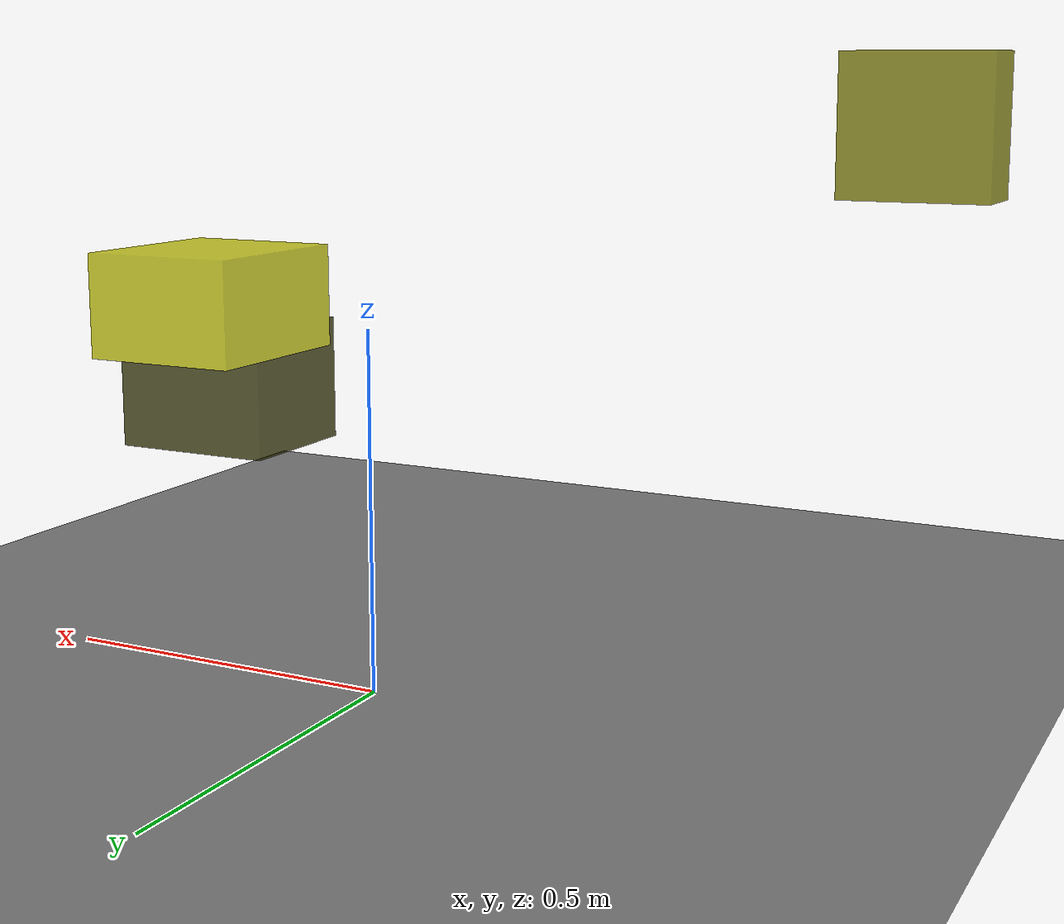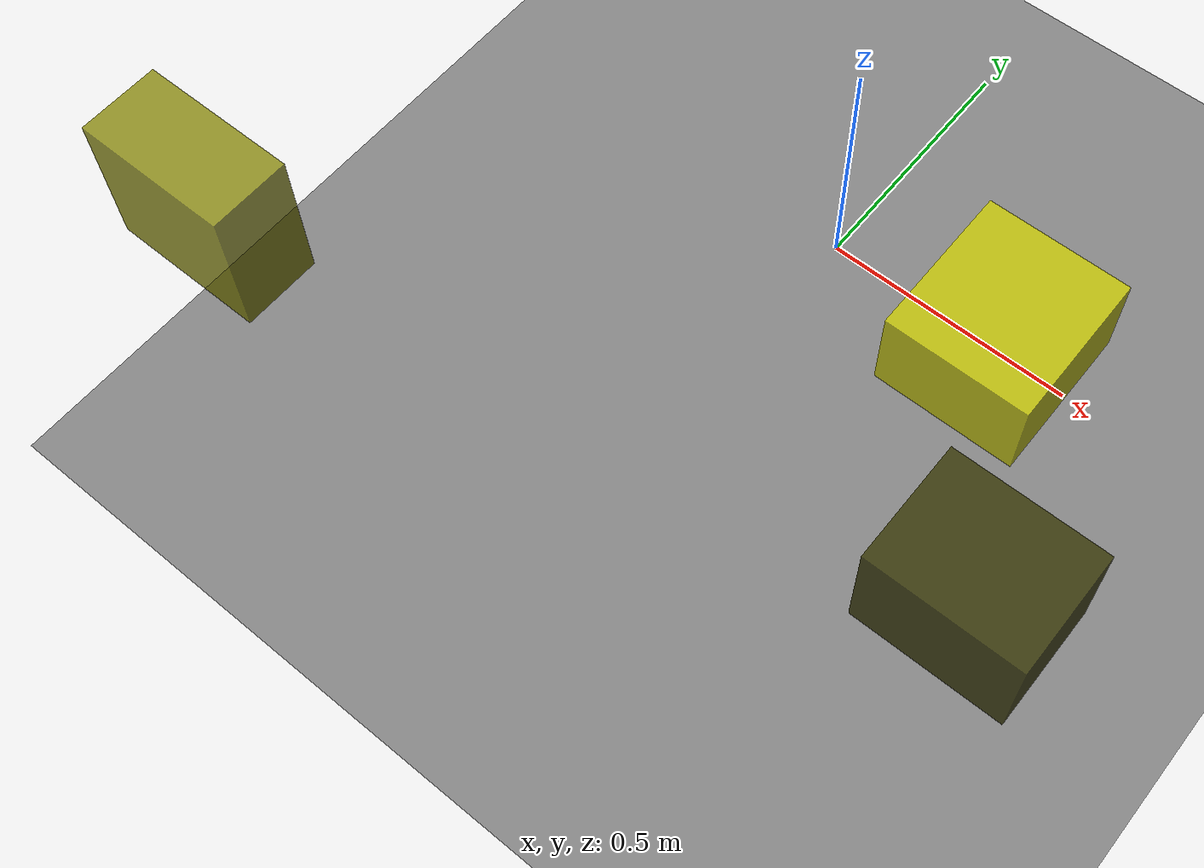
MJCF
<?xml version="1.0"?>
<mujoco model="obstacle_scene">
  <compiler angle="radian" coordinate="local"/>
  <option timestep="0.001" gravity="0 0 -9.81"/>

  <asset>
    <material name="obstacle_mat" rgba="0.8 0.8 0.0 0.8"/>
    <material name="ground_mat" rgba="0.5 0.5 0.5 1"/>
  </asset>

  <worldbody>
    <!-- Ground plane -->
    <geom name="ground" type="plane" size="3 3 0.1" material="ground_mat"/>

    <!-- Obstacles -->
    <body name="obstacle_0" pos="0.622432 -0.531572 0.298126">
      <geom name="obs_0" type="box" size="0.143242 0.115502 0.107654" rgba="0.2 0.2 0.0 0.8"/>
    </body>
    <body name="obstacle_1" pos="-0.495148 -0.929099 0.747921">
      <geom name="obs_1" type="box" size="0.127985 0.064889 0.121814" rgba="0.5 0.5 0.0 0.8"/>
    </body>
    <body name="obstacle_2" pos="0.441318 -0.249953 0.484289">
      <geom name="obs_2" type="box" size="0.124919 0.137885 0.081044" rgba="0.8 0.8 0.0 0.8"/>
    </body>
  </worldbody>
</mujoco>
